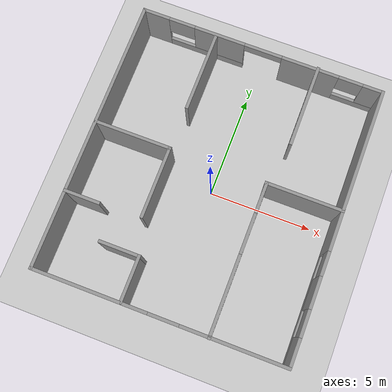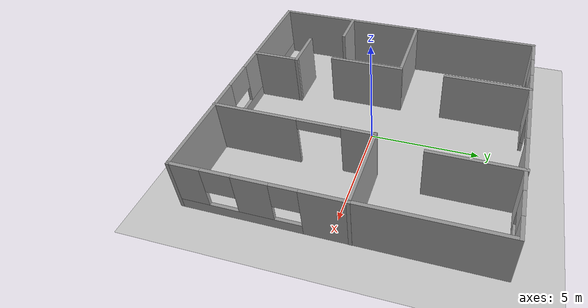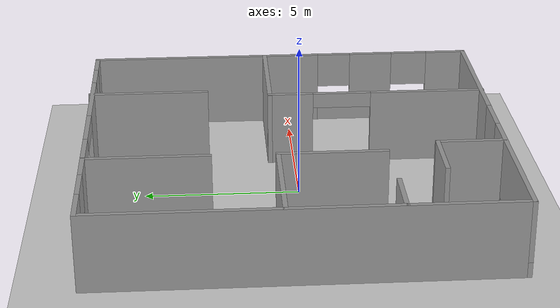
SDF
<sdf version="1.7">
 <world name="default">
  <light name="sun" type="directional">
   <pose>0 0 10 0 -0 0</pose>
   <diffuse>0.8 0.8 0.8 1</diffuse>
   <specular>0.2 0.2 0.2 1</specular>
   <attenuation>
    <range>1000</range>
    <constant>0.9</constant>
    <linear>0.01</linear>
    <quadratic>0.001</quadratic>
   </attenuation>
   <direction>-0.5 0.1 -0.9</direction>
   <spot><inner_angle>0</inner_angle><outer_angle>0</outer_angle><falloff>0</falloff></spot>
  </light>
  <model name="ground_plane">
   <static>1</static>
   <link name="link">
    <collision name="collision">
     <geometry><plane><normal>0 0 1</normal><size>100 100</size></plane></geometry>
     <surface><friction><ode><mu>100</mu><mu2>50</mu2></ode></friction></surface>
    </collision>
    <visual name="visual">
     <cast_shadows>0</cast_shadows>
     <geometry><plane><normal>0 0 1</normal><size>100 100</size></plane></geometry>
     <material>
      <script><uri>file://media/materials/scripts/gazebo.material</uri><name>Gazebo/Grey</name></script>
     </material>
    </visual>
   </link>
  </model>
  <gravity>0 0 -9.8</gravity>
  <magnetic_field>6e-06 2.3e-05 -4.2e-05</magnetic_field>
  <atmosphere type="adiabatic"/>
  <physics type="ode">
   <max_step_size>0.001</max_step_size>
   <real_time_factor>1</real_time_factor>
   <real_time_update_rate>1000</real_time_update_rate>
  </physics>
  <scene><ambient>0.4 0.4 0.4 1</ambient><background>0.7 0.7 0.7 1</background><shadows>1</shadows></scene>
  <audio><device>default</device></audio>
  <spherical_coordinates>
   <surface_model>EARTH_WGS84</surface_model>
   <latitude_deg>0</latitude_deg>
   <longitude_deg>0</longitude_deg>
   <elevation>0</elevation>
   <heading_deg>0</heading_deg>
  </spherical_coordinates>
  <model name="Untitled">
   <pose>0.012413 0.224885 0 0 -0 0</pose>
   <link name="Wall_0">
    <pose>-0.003089 6.53167 0 0 -0 0</pose>
    <visual name="Wall_0_Visual_0">
     <pose>-5.32195 0 1.25 0 -0 0</pose>
     <geometry><box><size>1.35611 0.15 2.5</size></box></geometry>
     <material>
      <script><uri>file://media/materials/scripts/gazebo.material</uri><name>Gazebo/Grey</name></script>
      <ambient>1 1 1 1</ambient>
     </material>
     <meta><layer>0</layer></meta>
    </visual>
    <collision name="Wall_0_Collision_0">
     <geometry><box><size>1.35611 0.15 2.5</size></box></geometry>
     <pose>-5.32195 0 1.25 0 -0 0</pose>
    </collision>
    <visual name="Wall_0_Visual_1">
     <pose>2.39068 0 1.25 0 -0 0</pose>
     <geometry><box><size>2.79307 0.15 2.5</size></box></geometry>
     <material>
      <script><uri>file://media/materials/scripts/gazebo.material</uri><name>Gazebo/Grey</name></script>
      <ambient>1 1 1 1</ambient>
     </material>
     <meta><layer>0</layer></meta>
    </visual>
    <collision name="Wall_0_Collision_1">
     <geometry><box><size>2.79307 0.15 2.5</size></box></geometry>
     <pose>2.39068 0 1.25 0 -0 0</pose>
    </collision>
    <visual name="Wall_0_Visual_2">
     <pose>-2.74905 0 0.25 0 -0 0</pose>
     <geometry><box><size>3.78968 0.15 0.5</size></box></geometry>
     <material>
      <script><uri>file://media/materials/scripts/gazebo.material</uri><name>Gazebo/Grey</name></script>
      <ambient>1 1 1 1</ambient>
     </material>
     <meta><layer>0</layer></meta>
    </visual>
    <collision name="Wall_0_Collision_2">
     <geometry><box><size>3.78968 0.15 0.5</size></box></geometry>
     <pose>-2.74905 0 0.25 0 -0 0</pose>
    </collision>
    <visual name="Wall_0_Visual_3">
     <pose>4.89361 0 0.25 0 -0 0</pose>
     <geometry><box><size>2.21278 0.15 0.5</size></box></geometry>
     <material>
      <script><uri>file://media/materials/scripts/gazebo.material</uri><name>Gazebo/Grey</name></script>
      <ambient>1 1 1 1</ambient>
     </material>
     <meta><layer>0</layer></meta>
    </visual>
    <collision name="Wall_0_Collision_3">
     <geometry><box><size>2.21278 0.15 0.5</size></box></geometry>
     <pose>4.89361 0 0.25 0 -0 0</pose>
    </collision>
    <visual name="Wall_0_Visual_4">
     <pose>-2.10618 0 1.5 0 -0 0</pose>
     <geometry><box><size>2.50394 0.15 2</size></box></geometry>
     <material>
      <script><uri>file://media/materials/scripts/gazebo.material</uri><name>Gazebo/Grey</name></script>
      <ambient>1 1 1 1</ambient>
     </material>
     <meta><layer>0</layer></meta>
    </visual>
    <collision name="Wall_0_Collision_4">
     <geometry><box><size>2.50394 0.15 2</size></box></geometry>
     <pose>-2.10618 0 1.5 0 -0 0</pose>
    </collision>
    <visual name="Wall_0_Visual_5">
     <pose>-2.10618 0 1.5 0 -0 0</pose>
     <geometry><box><size>2.50394 0.15 2</size></box></geometry>
     <material>
      <script><uri>file://media/materials/scripts/gazebo.material</uri><name>Gazebo/Grey</name></script>
      <ambient>1 1 1 1</ambient>
     </material>
     <meta><layer>0</layer></meta>
    </visual>
    <collision name="Wall_0_Collision_5">
     <geometry><box><size>2.50394 0.15 2</size></box></geometry>
     <pose>-2.10618 0 1.5 0 -0 0</pose>
    </collision>
    <visual name="Wall_0_Visual_6">
     <pose>5.47865 0 1.5 0 -0 0</pose>
     <geometry><box><size>1.04269 0.15 2</size></box></geometry>
     <material>
      <script><uri>file://media/materials/scripts/gazebo.material</uri><name>Gazebo/Grey</name></script>
      <ambient>1 1 1 1</ambient>
     </material>
     <meta><layer>0</layer></meta>
    </visual>
    <collision name="Wall_0_Collision_6">
     <geometry><box><size>1.04269 0.15 2</size></box></geometry>
     <pose>5.47865 0 1.5 0 -0 0</pose>
    </collision>
    <visual name="Wall_0_Visual_7">
     <pose>-4.00102 0 1.9 0 -0 0</pose>
     <geometry><box><size>1.28574 0.15 1.2</size></box></geometry>
     <material>
      <script><uri>file://media/materials/scripts/gazebo.material</uri><name>Gazebo/Grey</name></script>
      <ambient>1 1 1 1</ambient>
     </material>
     <meta><layer>0</layer></meta>
    </visual>
    <collision name="Wall_0_Collision_7">
     <geometry><box><size>1.28574 0.15 1.2</size></box></geometry>
     <pose>-4.00102 0 1.9 0 -0 0</pose>
    </collision>
    <visual name="Wall_0_Visual_8">
     <pose>4.37226 0 1.9 0 -0 0</pose>
     <geometry><box><size>1.17009 0.15 1.2</size></box></geometry>
     <material>
      <script><uri>file://media/materials/scripts/gazebo.material</uri><name>Gazebo/Grey</name></script>
      <ambient>1 1 1 1</ambient>
     </material>
     <meta><layer>0</layer></meta>
    </visual>
    <collision name="Wall_0_Collision_8">
     <geometry><box><size>1.17009 0.15 1.2</size></box></geometry>
     <pose>4.37226 0 1.9 0 -0 0</pose>
    </collision>
    <visual name="Wall_0_Visual_9">
     <pose>0.069968 0 2.25 0 -0 0</pose>
     <geometry><box><size>1.84835 0.15 0.5</size></box></geometry>
     <material>
      <script><uri>file://media/materials/scripts/gazebo.material</uri><name>Gazebo/Grey</name></script>
      <ambient>1 1 1 1</ambient>
     </material>
     <meta><layer>0</layer></meta>
    </visual>
    <collision name="Wall_0_Collision_9">
     <geometry><box><size>1.84835 0.15 0.5</size></box></geometry>
     <pose>0.069968 0 2.25 0 -0 0</pose>
    </collision>
    <visual name="Wall_0_Visual_10">
     <pose>0.069968 0 2.25 0 -0 0</pose>
     <geometry><box><size>1.84835 0.15 0.5</size></box></geometry>
     <material>
      <script><uri>file://media/materials/scripts/gazebo.material</uri><name>Gazebo/Grey</name></script>
      <ambient>1 1 1 1</ambient>
     </material>
     <meta><layer>0</layer></meta>
    </visual>
    <collision name="Wall_0_Collision_10">
     <geometry><box><size>1.84835 0.15 0.5</size></box></geometry>
     <pose>0.069968 0 2.25 0 -0 0</pose>
    </collision>
   </link>
   <link name="Wall_1">
    <pose>5.92191 -0.018331 0 0 -0 -1.5708</pose>
    <visual name="Wall_1_Visual_0">
     <pose>-2.66377 0 1.25 0 -0 0</pose>
     <geometry><box><size>7.92246 0.15 2.5</size></box></geometry>
     <material>
      <script><uri>file://media/materials/scripts/gazebo.material</uri><name>Gazebo/Grey</name></script>
      <ambient>1 1 1 1</ambient>
     </material>
     <meta><layer>0</layer></meta>
    </visual>
    <collision name="Wall_1_Collision_0">
     <geometry><box><size>7.92246 0.15 2.5</size></box></geometry>
     <pose>-2.66377 0 1.25 0 -0 0</pose>
    </collision>
    <visual name="Wall_1_Visual_1">
     <pose>3.96123 0 0.25 0 -0 0</pose>
     <geometry><box><size>5.32754 0.15 0.5</size></box></geometry>
     <material>
      <script><uri>file://media/materials/scripts/gazebo.material</uri><name>Gazebo/Grey</name></script>
      <ambient>1 1 1 1</ambient>
     </material>
     <meta><layer>0</layer></meta>
    </visual>
    <collision name="Wall_1_Collision_1">
     <geometry><box><size>5.32754 0.15 0.5</size></box></geometry>
     <pose>3.96123 0 0.25 0 -0 0</pose>
    </collision>
    <visual name="Wall_1_Visual_2">
     <pose>3.19516 0 1.5 0 -0 0</pose>
     <geometry><box><size>1.5015 0.15 2</size></box></geometry>
     <material>
      <script><uri>file://media/materials/scripts/gazebo.material</uri><name>Gazebo/Grey</name></script>
      <ambient>1 1 1 1</ambient>
     </material>
     <meta><layer>0</layer></meta>
    </visual>
    <collision name="Wall_1_Collision_2">
     <geometry><box><size>1.5015 0.15 2</size></box></geometry>
     <pose>3.19516 0 1.5 0 -0 0</pose>
    </collision>
    <visual name="Wall_1_Visual_3">
     <pose>5.91676 0 1.5 0 -0 0</pose>
     <geometry><box><size>1.41648 0.15 2</size></box></geometry>
     <material>
      <script><uri>file://media/materials/scripts/gazebo.material</uri><name>Gazebo/Grey</name></script>
      <ambient>1 1 1 1</ambient>
     </material>
     <meta><layer>0</layer></meta>
    </visual>
    <collision name="Wall_1_Collision_3">
     <geometry><box><size>1.41648 0.15 2</size></box></geometry>
     <pose>5.91676 0 1.5 0 -0 0</pose>
    </collision>
    <visual name="Wall_1_Visual_4">
     <pose>1.87093 0 1.9 0 -0 0</pose>
     <geometry><box><size>1.14696 0.15 1.2</size></box></geometry>
     <material>
      <script><uri>file://media/materials/scripts/gazebo.material</uri><name>Gazebo/Grey</name></script>
      <ambient>1 1 1 1</ambient>
     </material>
     <meta><layer>0</layer></meta>
    </visual>
    <collision name="Wall_1_Collision_4">
     <geometry><box><size>1.14696 0.15 1.2</size></box></geometry>
     <pose>1.87093 0 1.9 0 -0 0</pose>
    </collision>
    <visual name="Wall_1_Visual_5">
     <pose>4.57721 0 1.9 0 -0 0</pose>
     <geometry><box><size>1.26261 0.15 1.2</size></box></geometry>
     <material>
      <script><uri>file://media/materials/scripts/gazebo.material</uri><name>Gazebo/Grey</name></script>
      <ambient>1 1 1 1</ambient>
     </material>
     <meta><layer>0</layer></meta>
    </visual>
    <collision name="Wall_1_Collision_5">
     <geometry><box><size>1.26261 0.15 1.2</size></box></geometry>
     <pose>4.57721 0 1.9 0 -0 0</pose>
    </collision>
   </link>
   <link name="Wall_11">
    <pose>2.33966 -2.99587 0 0 -0 -1.57402</pose>
    <visual name="Wall_11_Visual_0">
     <pose>-2.90021 0 1.25 0 -0 0</pose>
     <geometry><box><size>1.52788 0.15 2.5</size></box></geometry>
     <material>
      <script><uri>file://media/materials/scripts/gazebo.material</uri><name>Gazebo/Grey</name></script>
      <ambient>1 1 1 1</ambient>
     </material>
     <meta><layer>0</layer></meta>
    </visual>
    <collision name="Wall_11_Collision_0">
     <geometry><box><size>1.52788 0.15 2.5</size></box></geometry>
     <pose>-2.90021 0 1.25 0 -0 0</pose>
    </collision>
    <visual name="Wall_11_Visual_1">
     <pose>1.73438 0 1.25 0 -0 0</pose>
     <geometry><box><size>3.85954 0.15 2.5</size></box></geometry>
     <material>
      <script><uri>file://media/materials/scripts/gazebo.material</uri><name>Gazebo/Grey</name></script>
      <ambient>1 1 1 1</ambient>
     </material>
     <meta><layer>0</layer></meta>
    </visual>
    <collision name="Wall_11_Collision_1">
     <geometry><box><size>3.85954 0.15 2.5</size></box></geometry>
     <pose>1.73438 0 1.25 0 -0 0</pose>
    </collision>
    <visual name="Wall_11_Visual_2">
     <pose>-1.16583 0 2.25 0 -0 0</pose>
     <geometry><box><size>1.94088 0.15 0.5</size></box></geometry>
     <material>
      <script><uri>file://media/materials/scripts/gazebo.material</uri><name>Gazebo/Grey</name></script>
      <ambient>1 1 1 1</ambient>
     </material>
     <meta><layer>0</layer></meta>
    </visual>
    <collision name="Wall_11_Collision_2">
     <geometry><box><size>1.94088 0.15 0.5</size></box></geometry>
     <pose>-1.16583 0 2.25 0 -0 0</pose>
    </collision>
   </link>
   <link name="Wall_13">
    <collision name="Wall_13_Collision">
     <geometry><box><size>3.75 0.15 2.5</size></box></geometry>
     <pose>0 0 1.25 0 -0 0</pose>
    </collision>
    <visual name="Wall_13_Visual">
     <pose>0 0 1.25 0 -0 0</pose>
     <geometry><box><size>3.75 0.15 2.5</size></box></geometry>
     <material>
      <script><uri>file://media/materials/scripts/gazebo.material</uri><name>Gazebo/Grey</name></script>
      <ambient>1 1 1 1</ambient>
     </material>
     <meta><layer>0</layer></meta>
    </visual>
    <pose>-4.09137 0.5736 0 0 -0 0</pose>
   </link>
   <link name="Wall_14">
    <collision name="Wall_14_Collision">
     <geometry><box><size>3.5 0.15 2.5</size></box></geometry>
     <pose>0 0 1.25 0 -0 0</pose>
    </collision>
    <visual name="Wall_14_Visual">
     <pose>0 0 1.25 0 -0 0</pose>
     <geometry><box><size>3.5 0.15 2.5</size></box></geometry>
     <material>
      <script><uri>file://media/materials/scripts/gazebo.material</uri><name>Gazebo/Grey</name></script>
      <ambient>1 1 1 1</ambient>
     </material>
     <meta><layer>0</layer></meta>
    </visual>
    <pose>-2.29137 -1.1014 0 0 -0 -1.5708</pose>
   </link>
   <link name="Wall_16">
    <collision name="Wall_16_Collision">
     <geometry><box><size>2.25 0.15 2.5</size></box></geometry>
     <pose>0 0 1.25 0 -0 0</pose>
    </collision>
    <visual name="Wall_16_Visual">
     <pose>0 0 1.25 0 -0 0</pose>
     <geometry><box><size>2.25 0.15 2.5</size></box></geometry>
     <material>
      <script><uri>file://media/materials/scripts/gazebo.material</uri><name>Gazebo/Grey</name></script>
      <ambient>1 1 1 1</ambient>
     </material>
     <meta><layer>0</layer></meta>
    </visual>
    <pose>-1.73731 -5.48852 0 0 -0 1.5708</pose>
   </link>
   <link name="Wall_17">
    <collision name="Wall_17_Collision">
     <geometry><box><size>2 0.15 2.5</size></box></geometry>
     <pose>0 0 1.25 0 -0 0</pose>
    </collision>
    <visual name="Wall_17_Visual">
     <pose>0 0 1.25 0 -0 0</pose>
     <geometry><box><size>2 0.15 2.5</size></box></geometry>
     <material>
      <script><uri>file://media/materials/scripts/gazebo.material</uri><name>Gazebo/Grey</name></script>
      <ambient>1 1 1 1</ambient>
     </material>
     <meta><layer>0</layer></meta>
    </visual>
    <pose>-2.66231 -4.43852 0 0 -0 3.14159</pose>
   </link>
   <link name="Wall_19">
    <collision name="Wall_19_Collision">
     <geometry><box><size>1.75 0.15 2.5</size></box></geometry>
     <pose>0 0 1.25 0 -0 0</pose>
    </collision>
    <visual name="Wall_19_Visual">
     <pose>0 0 1.25 0 -0 0</pose>
     <geometry><box><size>1.75 0.15 2.5</size></box></geometry>
     <material>
      <script><uri>file://media/materials/scripts/gazebo.material</uri><name>Gazebo/Grey</name></script>
      <ambient>1 1 1 1</ambient>
     </material>
     <meta><layer>0</layer></meta>
    </visual>
    <pose>-5.12395 -2.88388 0 0 -0 0</pose>
   </link>
   <link name="Wall_2">
    <pose>-0.003089 -6.56833 0 0 -0 3.14159</pose>
    <visual name="Wall_2_Visual_0">
     <pose>-3.47785 0 1.25 0 -0 0</pose>
     <geometry><box><size>5.04429 0.15 2.5</size></box></geometry>
     <material>
      <script><uri>file://media/materials/scripts/gazebo.material</uri><name>Gazebo/Grey</name></script>
      <ambient>1 1 1 1</ambient>
     </material>
     <meta><layer>0</layer></meta>
    </visual>
    <collision name="Wall_2_Collision_0">
     <geometry><box><size>5.04429 0.15 2.5</size></box></geometry>
     <pose>-3.47785 0 1.25 0 -0 0</pose>
    </collision>
    <visual name="Wall_2_Visual_1">
     <pose>2.52215 0 0.25 0 -0 0</pose>
     <geometry><box><size>6.95571 0.15 0.5</size></box></geometry>
     <material>
      <script><uri>file://media/materials/scripts/gazebo.material</uri><name>Gazebo/Grey</name></script>
      <ambient>1 1 1 1</ambient>
     </material>
     <meta><layer>0</layer></meta>
    </visual>
    <collision name="Wall_2_Collision_1">
     <geometry><box><size>6.95571 0.15 0.5</size></box></geometry>
     <pose>2.52215 0 0.25 0 -0 0</pose>
    </collision>
    <visual name="Wall_2_Visual_2">
     <pose>3.24597 0 1.5 0 -0 0</pose>
     <geometry><box><size>5.50805 0.15 2</size></box></geometry>
     <material>
      <script><uri>file://media/materials/scripts/gazebo.material</uri><name>Gazebo/Grey</name></script>
      <ambient>1 1 1 1</ambient>
     </material>
     <meta><layer>0</layer></meta>
    </visual>
    <collision name="Wall_2_Collision_2">
     <geometry><box><size>5.50805 0.15 2</size></box></geometry>
     <pose>3.24597 0 1.5 0 -0 0</pose>
    </collision>
    <visual name="Wall_2_Visual_3">
     <pose>-0.231882 0 1.9 0 -0 0</pose>
     <geometry><box><size>1.44766 0.15 1.2</size></box></geometry>
     <material>
      <script><uri>file://media/materials/scripts/gazebo.material</uri><name>Gazebo/Grey</name></script>
      <ambient>1 1 1 1</ambient>
     </material>
     <meta><layer>0</layer></meta>
    </visual>
    <collision name="Wall_2_Collision_3">
     <geometry><box><size>1.44766 0.15 1.2</size></box></geometry>
     <pose>-0.231882 0 1.9 0 -0 0</pose>
    </collision>
   </link>
   <link name="Wall_3">
    <collision name="Wall_3_Collision">
     <geometry><box><size>13.25 0.15 2.5</size></box></geometry>
     <pose>0 0 1.25 0 -0 0</pose>
    </collision>
    <visual name="Wall_3_Visual">
     <pose>0 0 1.25 0 -0 0</pose>
     <geometry><box><size>13.25 0.15 2.5</size></box></geometry>
     <material>
      <script><uri>file://media/materials/scripts/gazebo.material</uri><name>Gazebo/Grey</name></script>
      <ambient>1 1 1 1</ambient>
     </material>
     <meta><layer>0</layer></meta>
    </visual>
    <pose>-5.92809 -0.018331 0 0 -0 1.5708</pose>
   </link>
   <link name="Wall_5">
    <collision name="Wall_5_Collision">
     <geometry><box><size>4 0.15 2.5</size></box></geometry>
     <pose>0 0 1.25 0 -0 0</pose>
    </collision>
    <visual name="Wall_5_Visual">
     <pose>0 0 1.25 0 -0 0</pose>
     <geometry><box><size>4 0.15 2.5</size></box></geometry>
     <material>
      <script><uri>file://media/materials/scripts/gazebo.material</uri><name>Gazebo/Grey</name></script>
      <ambient>1 1 1 1</ambient>
     </material>
     <meta><layer>0</layer></meta>
    </visual>
    <pose>-2.27374 4.60705 0 0 -0 -1.5708</pose>
   </link>
   <link name="Wall_7">
    <collision name="Wall_7_Collision">
     <geometry><box><size>4 0.15 2.5</size></box></geometry>
     <pose>0 0 1.25 0 -0 0</pose>
    </collision>
    <visual name="Wall_7_Visual">
     <pose>0 0 1.25 0 -0 0</pose>
     <geometry><box><size>4 0.15 2.5</size></box></geometry>
     <material>
      <script><uri>file://media/materials/scripts/gazebo.material</uri><name>Gazebo/Grey</name></script>
      <ambient>1 1 1 1</ambient>
     </material>
     <meta><layer>0</layer></meta>
    </visual>
    <pose>2.75369 4.66024 0 0 -0 -1.5708</pose>
   </link>
   <link name="Wall_9">
    <collision name="Wall_9_Collision">
     <geometry><box><size>3.75 0.15 2.5</size></box></geometry>
     <pose>0 0 1.25 0 -0 0</pose>
    </collision>
    <visual name="Wall_9_Visual">
     <pose>0 0 1.25 0 -0 0</pose>
     <geometry><box><size>3.75 0.15 2.5</size></box></geometry>
     <material>
      <script><uri>file://media/materials/scripts/gazebo.material</uri><name>Gazebo/Grey</name></script>
      <ambient>1 1 1 1</ambient>
     </material>
     <meta><layer>0</layer></meta>
    </visual>
    <pose>4.12809 0.593261 0 0 -0 0</pose>
   </link>
   <static>1</static>
  </model>
 </world>
</sdf>
